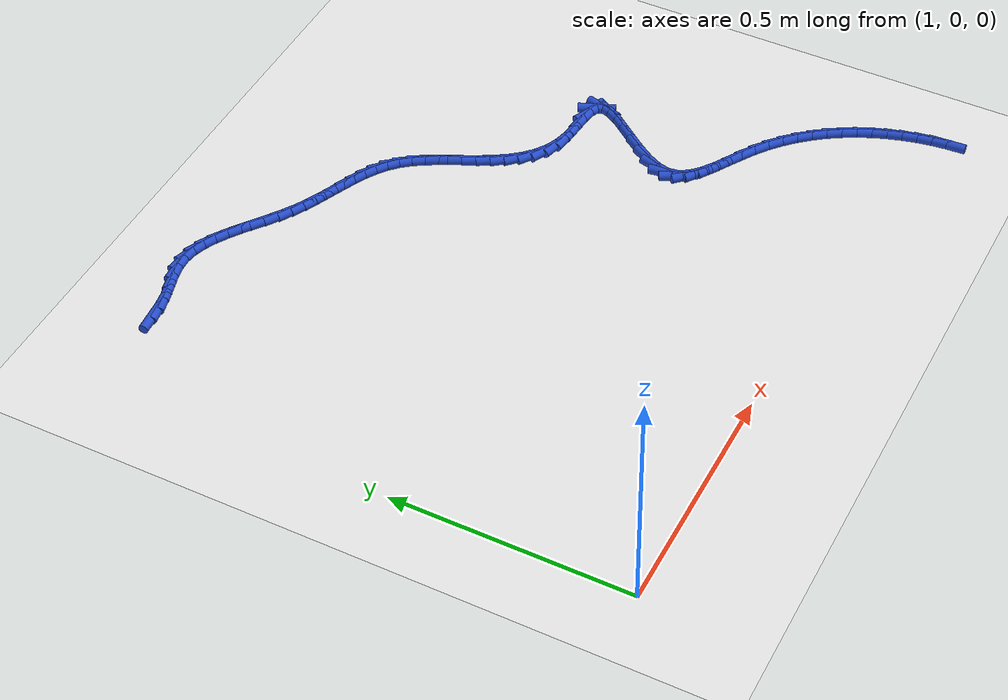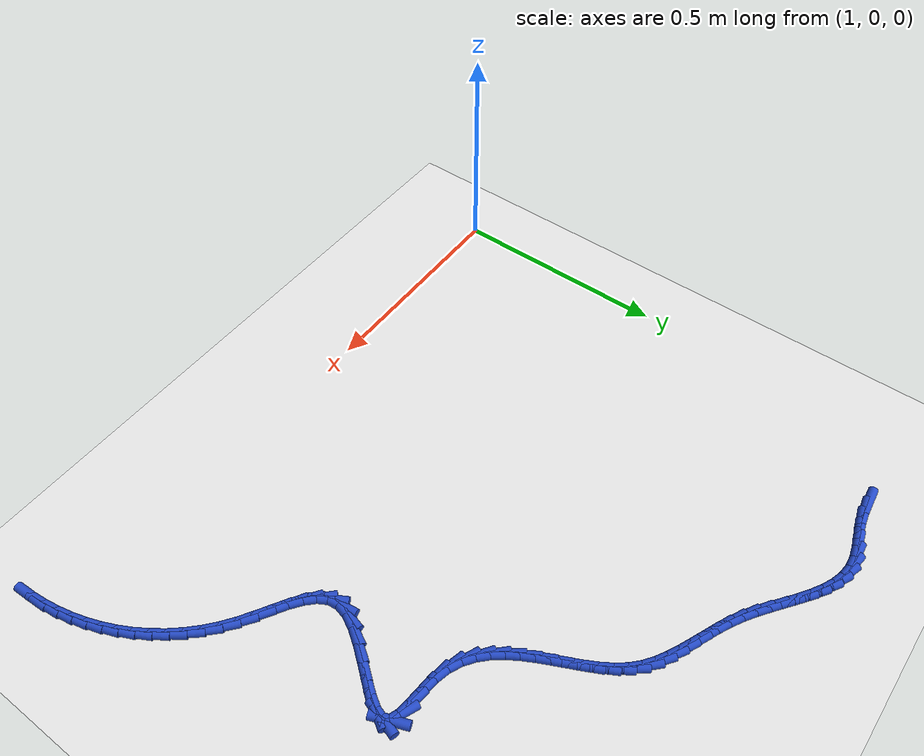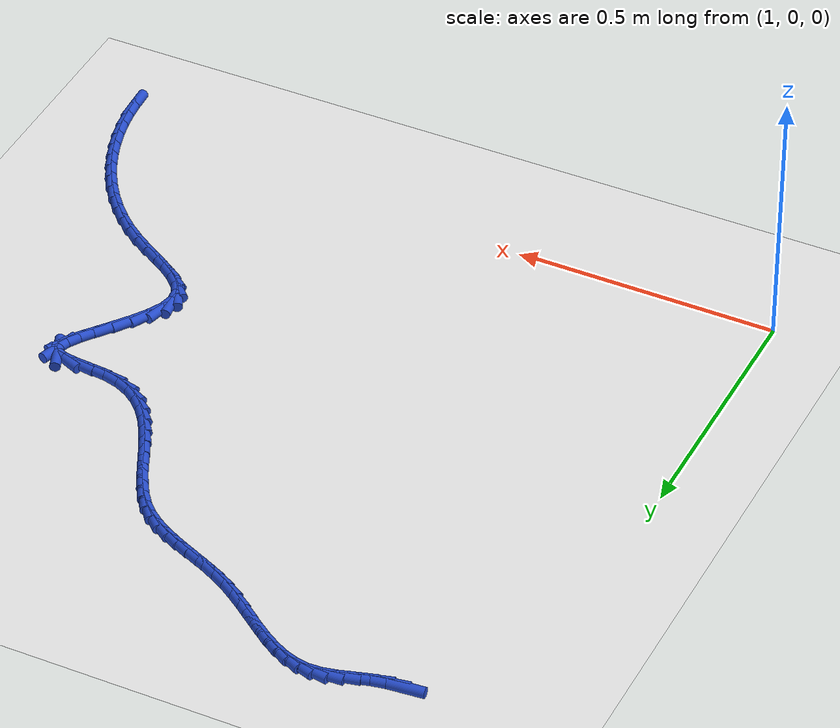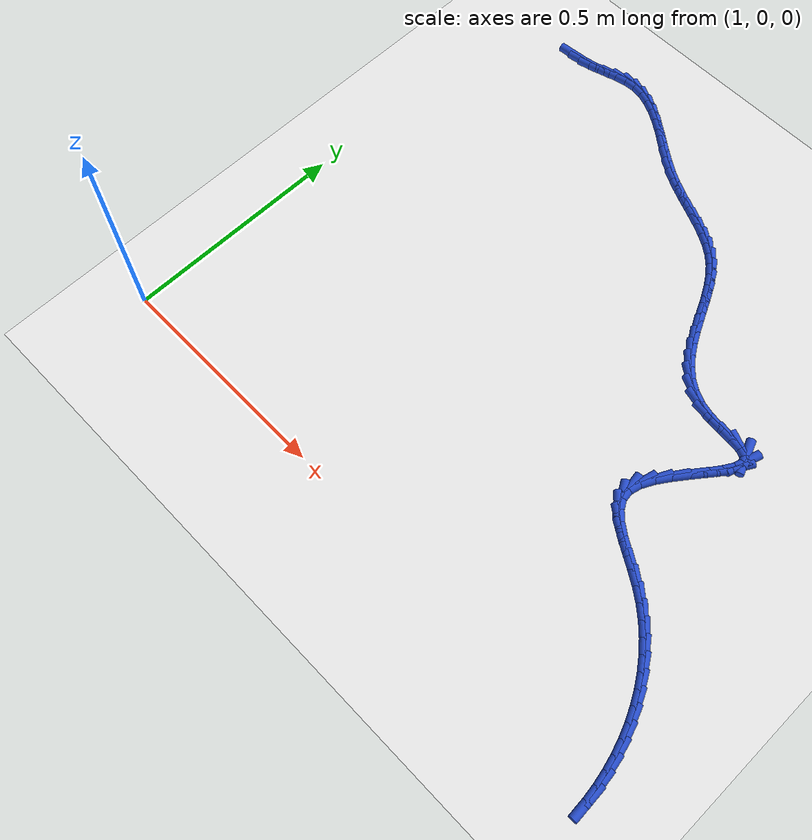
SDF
<sdf version="1.6">
 <world name="default">
  <model name="ground_plane">
   <static>1</static>
   <link name="link">
    <collision name="collision">
     <geometry><plane><normal>0 0 1</normal><size>100 100</size></plane></geometry>
     <surface><friction><ode><mu>100</mu><mu2>50</mu2></ode></friction></surface>
    </collision>
    <visual name="visual">
     <cast_shadows>0</cast_shadows>
     <geometry><plane><normal>0 0 1</normal><size>100 100</size></plane></geometry>
     <material>
      <script><uri>file://media/materials/scripts/gazebo.material</uri><name>Gazebo/WhiteGlow</name></script>
     </material>
    </visual>
   </link>
  </model>
  <model name="line">
   <link name="link_66">
    <pose>1.1870761028143422 1.1240682933298043 0.01 0 1.57 0.09376590115668865</pose>
    <collision name="collision">
     <geometry><cylinder><radius>0.01</radius><length>0.08</length></cylinder></geometry>
    </collision>
    <visual name="visual">
     <material>
      <script><name>Gazebo/Blue</name><uri>file://media/materials/scripts/gazebo.material</uri></script>
     </material>
     <geometry><cylinder><radius>0.01</radius><length>0.08</length></cylinder></geometry>
    </visual>
   </link>
   <link name="link_67">
    <pose>1.2142319435196987 1.1266220739129875 0.01 0 1.57 0.17965165779725353</pose>
    <collision name="collision">
     <geometry><cylinder><radius>0.01</radius><length>0.08</length></cylinder></geometry>
    </collision>
    <visual name="visual">
     <material>
      <script><name>Gazebo/Blue</name><uri>file://media/materials/scripts/gazebo.material</uri></script>
     </material>
     <geometry><cylinder><radius>0.01</radius><length>0.08</length></cylinder></geometry>
    </visual>
   </link>
   <link name="link_68">
    <pose>1.2413194313868445 1.1315414237813601 0.01 0 1.57 0.26802392747829523</pose>
    <collision name="collision">
     <geometry><cylinder><radius>0.01</radius><length>0.08</length></cylinder></geometry>
    </collision>
    <visual name="visual">
     <material>
      <script><name>Gazebo/Blue</name><uri>file://media/materials/scripts/gazebo.material</uri></script>
     </material>
     <geometry><cylinder><radius>0.01</radius><length>0.08</length></cylinder></geometry>
    </visual>
   </link>
   <link name="link_69">
    <pose>1.2683109290829406 1.1389541491604618 0.01 0 1.57 0.2914446457398157</pose>
    <collision name="collision">
     <geometry><cylinder><radius>0.01</radius><length>0.08</length></cylinder></geometry>
    </collision>
    <visual name="visual">
     <material>
      <script><name>Gazebo/Blue</name><uri>file://media/materials/scripts/gazebo.material</uri></script>
     </material>
     <geometry><cylinder><radius>0.01</radius><length>0.08</length></cylinder></geometry>
    </visual>
   </link>
   <link name="link_70">
    <pose>1.2950326112471406 1.14697029995917 0.01 0 1.57 0.22430005298441646</pose>
    <collision name="collision">
     <geometry><cylinder><radius>0.01</radius><length>0.08</length></cylinder></geometry>
    </collision>
    <visual name="visual">
     <material>
      <script><name>Gazebo/Blue</name><uri>file://media/materials/scripts/gazebo.material</uri></script>
     </material>
     <geometry><cylinder><radius>0.01</radius><length>0.08</length></cylinder></geometry>
    </visual>
   </link>
   <link name="link_71">
    <pose>1.321256536910218 1.1529529968601222 0.01 0 1.57 0.05680049520561192</pose>
    <collision name="collision">
     <geometry><cylinder><radius>0.01</radius><length>0.08</length></cylinder></geometry>
    </collision>
    <visual name="visual">
     <material>
      <script><name>Gazebo/Blue</name><uri>file://media/materials/scripts/gazebo.material</uri></script>
     </material>
     <geometry><cylinder><radius>0.01</radius><length>0.08</length></cylinder></geometry>
    </visual>
   </link>
   <link name="link_72">
    <pose>1.3467704154121236 1.1544037583247533 0.01 0 1.57 -0.14732418766810487</pose>
    <collision name="collision">
     <geometry><cylinder><radius>0.01</radius><length>0.08</length></cylinder></geometry>
    </collision>
    <visual name="visual">
     <material>
      <script><name>Gazebo/Blue</name><uri>file://media/materials/scripts/gazebo.material</uri></script>
     </material>
     <geometry><cylinder><radius>0.01</radius><length>0.08</length></cylinder></geometry>
    </visual>
   </link>
   <link name="link_73">
    <pose>1.371575976507996 1.1507226283115934 0.01 0 1.57 -0.3202163878088802</pose>
    <collision name="collision">
     <geometry><cylinder><radius>0.01</radius><length>0.08</length></cylinder></geometry>
    </collision>
    <visual name="visual">
     <material>
      <script><name>Gazebo/Blue</name><uri>file://media/materials/scripts/gazebo.material</uri></script>
     </material>
     <geometry><cylinder><radius>0.01</radius><length>0.08</length></cylinder></geometry>
    </visual>
   </link>
   <link name="link_74">
    <pose>1.395829371145521 1.1426794853862428 0.01 0 1.57 -0.45267663990264106</pose>
    <collision name="collision">
     <geometry><cylinder><radius>0.01</radius><length>0.08</length></cylinder></geometry>
    </collision>
    <visual name="visual">
     <material>
      <script><name>Gazebo/Blue</name><uri>file://media/materials/scripts/gazebo.material</uri></script>
     </material>
     <geometry><cylinder><radius>0.01</radius><length>0.08</length></cylinder></geometry>
    </visual>
   </link>
   <link name="link_75">
    <pose>1.4196901689483974 1.1310745343968125 0.01 0 1.57 -0.5463079709869142</pose>
    <collision name="collision">
     <geometry><cylinder><radius>0.01</radius><length>0.08</length></cylinder></geometry>
    </collision>
    <visual name="visual">
     <material>
      <script><name>Gazebo/Blue</name><uri>file://media/materials/scripts/gazebo.material</uri></script>
     </material>
     <geometry><cylinder><radius>0.01</radius><length>0.08</length></cylinder></geometry>
    </visual>
   </link>
   <link name="link_76">
    <pose>1.443317939540323 1.116707980191414 0.01 0 1.57 -0.60615055954736</pose>
    <collision name="collision">
     <geometry><cylinder><radius>0.01</radius><length>0.08</length></cylinder></geometry>
    </collision>
    <visual name="visual">
     <material>
      <script><name>Gazebo/Blue</name><uri>file://media/materials/scripts/gazebo.material</uri></script>
     </material>
     <geometry><cylinder><radius>0.01</radius><length>0.08</length></cylinder></geometry>
    </visual>
   </link>
   <link name="link_77">
    <pose>1.4668722525449958 1.1003800276181572 0.01 0 1.57 -0.636939981395557</pose>
    <collision name="collision">
     <geometry><cylinder><radius>0.01</radius><length>0.08</length></cylinder></geometry>
    </collision>
    <visual name="visual">
     <material>
      <script><name>Gazebo/Blue</name><uri>file://media/materials/scripts/gazebo.material</uri></script>
     </material>
     <geometry><cylinder><radius>0.01</radius><length>0.08</length></cylinder></geometry>
    </visual>
   </link>
   <link name="link_78">
    <pose>1.4905126775861142 1.0828908815251537 0.01 0 1.57 -0.6417721367929571</pose>
    <collision name="collision">
     <geometry><cylinder><radius>0.01</radius><length>0.08</length></cylinder></geometry>
    </collision>
    <visual name="visual">
     <material>
      <script><name>Gazebo/Blue</name><uri>file://media/materials/scripts/gazebo.material</uri></script>
     </material>
     <geometry><cylinder><radius>0.01</radius><length>0.08</length></cylinder></geometry>
    </visual>
   </link>
   <link name="link_79">
    <pose>1.5143987842873752 1.0650407467605152 0.01 0 1.57 -0.621881728110758</pose>
    <collision name="collision">
     <geometry><cylinder><radius>0.01</radius><length>0.08</length></cylinder></geometry>
    </collision>
    <visual name="visual">
     <material>
      <script><name>Gazebo/Blue</name><uri>file://media/materials/scripts/gazebo.material</uri></script>
     </material>
     <geometry><cylinder><radius>0.01</radius><length>0.08</length></cylinder></geometry>
    </visual>
   </link>
   <link name="link_80">
    <pose>1.5386901422724772 1.0476298281723515 0.01 0 1.57 -0.576798807724816</pose>
    <collision name="collision">
     <geometry><cylinder><radius>0.01</radius><length>0.08</length></cylinder></geometry>
    </collision>
    <visual name="visual">
     <material>
      <script><name>Gazebo/Blue</name><uri>file://media/materials/scripts/gazebo.material</uri></script>
     </material>
     <geometry><cylinder><radius>0.01</radius><length>0.08</length></cylinder></geometry>
    </visual>
   </link>
   <link name="link_81">
    <pose>1.5635463211651184 1.031458330608774 0.01 0 1.57 -0.5095774138339798</pose>
    <collision name="collision">
     <geometry><cylinder><radius>0.01</radius><length>0.08</length></cylinder></geometry>
    </collision>
    <visual name="visual">
     <material>
      <script><name>Gazebo/Blue</name><uri>file://media/materials/scripts/gazebo.material</uri></script>
     </material>
     <geometry><cylinder><radius>0.01</radius><length>0.08</length></cylinder></geometry>
    </visual>
   </link>
   <link name="link_82">
    <pose>1.5890764207866805 1.0171920077761607 0.01 0 1.57 -0.4516879873389002</pose>
    <collision name="collision">
     <geometry><cylinder><radius>0.01</radius><length>0.08</length></cylinder></geometry>
    </collision>
    <visual name="visual">
     <material>
      <script><name>Gazebo/Blue</name><uri>file://media/materials/scripts/gazebo.material</uri></script>
     </material>
     <geometry><cylinder><radius>0.01</radius><length>0.08</length></cylinder></geometry>
    </visual>
   </link>
   <link name="link_83">
    <pose>1.6150497275559288 1.0045913532478732 0.01 0 1.57 -0.4173337428751883</pose>
    <collision name="collision">
     <geometry><cylinder><radius>0.01</radius><length>0.08</length></cylinder></geometry>
    </collision>
    <visual name="visual">
     <material>
      <script><name>Gazebo/Blue</name><uri>file://media/materials/scripts/gazebo.material</uri></script>
     </material>
     <geometry><cylinder><radius>0.01</radius><length>0.08</length></cylinder></geometry>
    </visual>
   </link>
   <link name="link_84">
    <pose>1.641095304951707 0.9930433078289995 0.01 0 1.57 -0.4073654501644141</pose>
    <collision name="collision">
     <geometry><cylinder><radius>0.01</radius><length>0.08</length></cylinder></geometry>
    </collision>
    <visual name="visual">
     <material>
      <script><name>Gazebo/Blue</name><uri>file://media/materials/scripts/gazebo.material</uri></script>
     </material>
     <geometry><cylinder><radius>0.01</radius><length>0.08</length></cylinder></geometry>
    </visual>
   </link>
   <link name="link_85">
    <pose>1.666841776290135 0.9819336397347158 0.01 0 1.57 -0.42289795561225374</pose>
    <collision name="collision">
     <geometry><cylinder><radius>0.01</radius><length>0.08</length></cylinder></geometry>
    </collision>
    <visual name="visual">
     <material>
      <script><name>Gazebo/Blue</name><uri>file://media/materials/scripts/gazebo.material</uri></script>
     </material>
     <geometry><cylinder><radius>0.01</radius><length>0.08</length></cylinder></geometry>
    </visual>
   </link>
   <link name="link_86">
    <pose>1.6919177648873316 0.9706481171801985 0.01 0 1.57 -0.4655944123026897</pose>
    <collision name="collision">
     <geometry><cylinder><radius>0.01</radius><length>0.08</length></cylinder></geometry>
    </collision>
    <visual name="visual">
     <material>
      <script><name>Gazebo/Blue</name><uri>file://media/materials/scripts/gazebo.material</uri></script>
     </material>
     <geometry><cylinder><radius>0.01</radius><length>0.08</length></cylinder></geometry>
    </visual>
   </link>
   <link name="link_87">
    <pose>1.715951894059416 0.9585725083806228 0.01 0 1.57 -0.5374037986020508</pose>
    <collision name="collision">
     <geometry><cylinder><radius>0.01</radius><length>0.08</length></cylinder></geometry>
    </collision>
    <visual name="visual">
     <material>
      <script><name>Gazebo/Blue</name><uri>file://media/materials/scripts/gazebo.material</uri></script>
     </material>
     <geometry><cylinder><radius>0.01</radius><length>0.08</length></cylinder></geometry>
    </visual>
   </link>
   <link name="link_88">
    <pose>1.7385727871225058 0.9450925815511648 0.01 0 1.57 -0.6395352327221191</pose>
    <collision name="collision">
     <geometry><cylinder><radius>0.01</radius><length>0.08</length></cylinder></geometry>
    </collision>
    <visual name="visual">
     <material>
      <script><name>Gazebo/Blue</name><uri>file://media/materials/scripts/gazebo.material</uri></script>
     </material>
     <geometry><cylinder><radius>0.01</radius><length>0.08</length></cylinder></geometry>
    </visual>
   </link>
   <link name="link_89">
    <pose>1.7594090673927214 0.9295941049070011 0.01 0 1.57 -0.7701876874329247</pose>
    <collision name="collision">
     <geometry><cylinder><radius>0.01</radius><length>0.08</length></cylinder></geometry>
    </collision>
    <visual name="visual">
     <material>
      <script><name>Gazebo/Blue</name><uri>file://media/materials/scripts/gazebo.material</uri></script>
     </material>
     <geometry><cylinder><radius>0.01</radius><length>0.08</length></cylinder></geometry>
    </visual>
   </link>
   <link name="link_90">
    <pose>1.7780939418413382 0.9114691683862071 0.01 0 1.57 -0.9034623496639498</pose>
    <collision name="collision">
     <geometry><cylinder><radius>0.01</radius><length>0.08</length></cylinder></geometry>
    </collision>
    <visual name="visual">
     <material>
      <script><name>Gazebo/Blue</name><uri>file://media/materials/scripts/gazebo.material</uri></script>
     </material>
     <geometry><cylinder><radius>0.01</radius><length>0.08</length></cylinder></geometry>
    </visual>
   </link>
   <link name="link_91">
    <pose>1.7945782645540493 0.8905479570645414 0.01 0 1.57 -1.0038426076547085</pose>
    <collision name="collision">
     <geometry><cylinder><radius>0.01</radius><length>0.08</length></cylinder></geometry>
    </collision>
    <visual name="visual">
     <material>
      <script><name>Gazebo/Blue</name><uri>file://media/materials/scripts/gazebo.material</uri></script>
     </material>
     <geometry><cylinder><radius>0.01</radius><length>0.08</length></cylinder></geometry>
    </visual>
   </link>
   <link name="link_92">
    <pose>1.809331456283168 0.8673758570219618 0.01 0 1.57 -1.0712734278921052</pose>
    <collision name="collision">
     <geometry><cylinder><radius>0.01</radius><length>0.08</length></cylinder></geometry>
    </collision>
    <visual name="visual">
     <material>
      <script><name>Gazebo/Blue</name><uri>file://media/materials/scripts/gazebo.material</uri></script>
     </material>
     <geometry><cylinder><radius>0.01</radius><length>0.08</length></cylinder></geometry>
    </visual>
   </link>
   <link name="link_93">
    <pose>1.8228707566699627 0.8425642055836581 0.01 0 1.57 -1.1095442872445158</pose>
    <collision name="collision">
     <geometry><cylinder><radius>0.01</radius><length>0.08</length></cylinder></geometry>
    </collision>
    <visual name="visual">
     <material>
      <script><name>Gazebo/Blue</name><uri>file://media/materials/scripts/gazebo.material</uri></script>
     </material>
     <geometry><cylinder><radius>0.01</radius><length>0.08</length></cylinder></geometry>
    </visual>
   </link>
   <link name="link_94">
    <pose>1.8357134053557007 0.8167243400748195 0.01 0 1.57 -1.1214207741752051</pose>
    <collision name="collision">
     <geometry><cylinder><radius>0.01</radius><length>0.08</length></cylinder></geometry>
    </collision>
    <visual name="visual">
     <material>
      <script><name>Gazebo/Blue</name><uri>file://media/materials/scripts/gazebo.material</uri></script>
     </material>
     <geometry><cylinder><radius>0.01</radius><length>0.08</length></cylinder></geometry>
    </visual>
   </link>
   <link name="link_95">
    <pose>1.8483766419816516 0.7904675978206364 0.01 0 1.57 -1.1080723671258257</pose>
    <collision name="collision">
     <geometry><cylinder><radius>0.01</radius><length>0.08</length></cylinder></geometry>
    </collision>
    <visual name="visual">
     <material>
      <script><name>Gazebo/Blue</name><uri>file://media/materials/scripts/gazebo.material</uri></script>
     </material>
     <geometry><cylinder><radius>0.01</radius><length>0.08</length></cylinder></geometry>
    </visual>
   </link>
   <link name="link_96">
    <pose>1.861377706189082 0.7644053161462986 0.01 0 1.57 -1.069015690051241</pose>
    <collision name="collision">
     <geometry><cylinder><radius>0.01</radius><length>0.08</length></cylinder></geometry>
    </collision>
    <visual name="visual">
     <material>
      <script><name>Gazebo/Blue</name><uri>file://media/materials/scripts/gazebo.material</uri></script>
     </material>
     <geometry><cylinder><radius>0.01</radius><length>0.08</length></cylinder></geometry>
    </visual>
   </link>
   <link name="link_97">
    <pose>1.8752338376192605 0.7391488323769961 0.01 0 1.57 -1.002339002714773</pose>
    <collision name="collision">
     <geometry><cylinder><radius>0.01</radius><length>0.08</length></cylinder></geometry>
    </collision>
    <visual name="visual">
     <material>
      <script><name>Gazebo/Blue</name><uri>file://media/materials/scripts/gazebo.material</uri></script>
     </material>
     <geometry><cylinder><radius>0.01</radius><length>0.08</length></cylinder></geometry>
    </visual>
   </link>
   <link name="link_98">
    <pose>1.890462275913455 0.7153094838379189 0.01 0 1.57 -0.9053696773807592</pose>
    <collision name="collision">
     <geometry><cylinder><radius>0.01</radius><length>0.08</length></cylinder></geometry>
    </collision>
    <visual name="visual">
     <material>
      <script><name>Gazebo/Blue</name><uri>file://media/materials/scripts/gazebo.material</uri></script>
     </material>
     <geometry><cylinder><radius>0.01</radius><length>0.08</length></cylinder></geometry>
    </visual>
   </link>
   <link name="link_99">
    <pose>1.9075802607129335 0.6934986078542564 0.01 0 1.57 -0.7762577746734833</pose>
    <collision name="collision">
     <geometry><cylinder><radius>0.01</radius><length>0.08</length></cylinder></geometry>
    </collision>
    <visual name="visual">
     <material>
      <script><name>Gazebo/Blue</name><uri>file://media/materials/scripts/gazebo.material</uri></script>
     </material>
     <geometry><cylinder><radius>0.01</radius><length>0.08</length></cylinder></geometry>
    </visual>
   </link>
   <link name="link_100">
    <pose>1.9271050316589653 0.6743275417511989 0.01 0 1.57 -0.6168510560199968</pose>
    <collision name="collision">
     <geometry><cylinder><radius>0.01</radius><length>0.08</length></cylinder></geometry>
    </collision>
    <visual name="visual">
     <material>
      <script><name>Gazebo/Blue</name><uri>file://media/materials/scripts/gazebo.material</uri></script>
     </material>
     <geometry><cylinder><radius>0.01</radius><length>0.08</length></cylinder></geometry>
    </visual>
   </link>
   <link name="link_101">
    <pose>1.9495538283928173 0.6584076228539365 0.01 0 1.57 -0.4358467954528984</pose>
    <collision name="collision">
     <geometry><cylinder><radius>0.01</radius><length>0.08</length></cylinder></geometry>
    </collision>
    <visual name="visual">
     <material>
      <script><name>Gazebo/Blue</name><uri>file://media/materials/scripts/gazebo.material</uri></script>
     </material>
     <geometry><cylinder><radius>0.01</radius><length>0.08</length></cylinder></geometry>
    </visual>
   </link>
   <link name="link_102">
    <pose>1.975443890555757 0.6463501884876587 0.01 0 1.57 -0.2500680511181714</pose>
    <collision name="collision">
     <geometry><cylinder><radius>0.01</radius><length>0.08</length></cylinder></geometry>
    </collision>
    <visual name="visual">
     <material>
      <script><name>Gazebo/Blue</name><uri>file://media/materials/scripts/gazebo.material</uri></script>
     </material>
     <geometry><cylinder><radius>0.01</radius><length>0.08</length></cylinder></geometry>
    </visual>
   </link>
   <link name="link_103">
    <pose>2.0052506085270636 0.63873712318815 0.01 0 1.57 -0.11830283851813377</pose>
    <collision name="collision">
     <geometry><cylinder><radius>0.01</radius><length>0.08</length></cylinder></geometry>
    </collision>
    <visual name="visual">
     <material>
      <script><name>Gazebo/Blue</name><uri>file://media/materials/scripts/gazebo.material</uri></script>
     </material>
     <geometry><cylinder><radius>0.01</radius><length>0.08</length></cylinder></geometry>
    </visual>
   </link>
   <link name="link_104">
    <pose>2.0376527437870333 0.6348858750331817 0.01 0 1.57 -0.07944997966516416</pose>
    <collision name="collision">
     <geometry><cylinder><radius>0.01</radius><length>0.08</length></cylinder></geometry>
    </collision>
    <visual name="visual">
     <material>
      <script><name>Gazebo/Blue</name><uri>file://media/materials/scripts/gazebo.material</uri></script>
     </material>
     <geometry><cylinder><radius>0.01</radius><length>0.08</length></cylinder></geometry>
    </visual>
   </link>
   <link name="link_105">
    <pose>2.068891934194189 0.6323986864941795 0.01 0 1.57 -0.1384559685129104</pose>
    <collision name="collision">
     <geometry><cylinder><radius>0.01</radius><length>0.08</length></cylinder></geometry>
    </collision>
    <visual name="visual">
     <material>
      <script><name>Gazebo/Blue</name><uri>file://media/materials/scripts/gazebo.material</uri></script>
     </material>
     <geometry><cylinder><radius>0.01</radius><length>0.08</length></cylinder></geometry>
    </visual>
   </link>
   <link name="link_106">
    <pose>2.0950361245145595 0.628755557837303 0.01 0 1.57 -0.4040600202982624</pose>
    <collision name="collision">
     <geometry><cylinder><radius>0.01</radius><length>0.08</length></cylinder></geometry>
    </collision>
    <visual name="visual">
     <material>
      <script><name>Gazebo/Blue</name><uri>file://media/materials/scripts/gazebo.material</uri></script>
     </material>
     <geometry><cylinder><radius>0.01</radius><length>0.08</length></cylinder></geometry>
    </visual>
   </link>
   <link name="link_107">
    <pose>2.1121532595141743 0.6214364893287121 0.01 0 1.57 -1.193388404743611</pose>
    <collision name="collision">
     <geometry><cylinder><radius>0.01</radius><length>0.08</length></cylinder></geometry>
    </collision>
    <visual name="visual">
     <material>
      <script><name>Gazebo/Blue</name><uri>file://media/materials/scripts/gazebo.material</uri></script>
     </material>
     <geometry><cylinder><radius>0.01</radius><length>0.08</length></cylinder></geometry>
    </visual>
   </link>
   <link name="link_108">
    <pose>2.117296949986357 0.6084608139139248 0.01 0 1.57 1.2818512479314532</pose>
    <collision name="collision">
     <geometry><cylinder><radius>0.01</radius><length>0.08</length></cylinder></geometry>
    </collision>
    <visual name="visual">
     <material>
      <script><name>Gazebo/Blue</name><uri>file://media/materials/scripts/gazebo.material</uri></script>
     </material>
     <geometry><cylinder><radius>0.01</radius><length>0.08</length></cylinder></geometry>
    </visual>
   </link>
   <link name="link_109">
    <pose>2.111878214109434 0.590232132774277 0.01 0 1.57 1.0331770734157517</pose>
    <collision name="collision">
     <geometry><cylinder><radius>0.01</radius><length>0.08</length></cylinder></geometry>
    </collision>
    <visual name="visual">
     <material>
      <script><name>Gazebo/Blue</name><uri>file://media/materials/scripts/gazebo.material</uri></script>
     </material>
     <geometry><cylinder><radius>0.01</radius><length>0.08</length></cylinder></geometry>
    </visual>
   </link>
   <link name="link_110">
    <pose>2.098511787588018 0.5678126922920805 0.01 0 1.57 0.9389595610371577</pose>
    <collision name="collision">
     <geometry><cylinder><radius>0.01</radius><length>0.08</length></cylinder></geometry>
    </collision>
    <visual name="visual">
     <material>
      <script><name>Gazebo/Blue</name><uri>file://media/materials/scripts/gazebo.material</uri></script>
     </material>
     <geometry><cylinder><radius>0.01</radius><length>0.08</length></cylinder></geometry>
    </visual>
   </link>
   <link name="link_111">
    <pose>2.0798124464862324 0.5422647609333977 0.01 0 1.57 0.9111128262575541</pose>
    <collision name="collision">
     <geometry><cylinder><radius>0.01</radius><length>0.08</length></cylinder></geometry>
    </collision>
    <visual name="visual">
     <material>
      <script><name>Gazebo/Blue</name><uri>file://media/materials/scripts/gazebo.material</uri></script>
     </material>
     <geometry><cylinder><radius>0.01</radius><length>0.08</length></cylinder></geometry>
    </visual>
   </link>
   <link name="link_112">
    <pose>2.0583949668682036 0.5146506071642912 0.01 0 1.57 0.9260158867525837</pose>
    <collision name="collision">
     <geometry><cylinder><radius>0.01</radius><length>0.08</length></cylinder></geometry>
    </collision>
    <visual name="visual">
     <material>
      <script><name>Gazebo/Blue</name><uri>file://media/materials/scripts/gazebo.material</uri></script>
     </material>
     <geometry><cylinder><radius>0.01</radius><length>0.08</length></cylinder></geometry>
    </visual>
   </link>
   <link name="link_113">
    <pose>2.0368741247980524 0.48603249945082283 0.01 0 1.57 0.9835318177837018</pose>
    <collision name="collision">
     <geometry><cylinder><radius>0.01</radius><length>0.08</length></cylinder></geometry>
    </collision>
    <visual name="visual">
     <material>
      <script><name>Gazebo/Blue</name><uri>file://media/materials/scripts/gazebo.material</uri></script>
     </material>
     <geometry><cylinder><radius>0.01</radius><length>0.08</length></cylinder></geometry>
    </visual>
   </link>
   <link name="link_114">
    <pose>2.0178646963399056 0.45747270625905606 0.01 0 1.57 1.1023893083673468</pose>
    <collision name="collision">
     <geometry><cylinder><radius>0.01</radius><length>0.08</length></cylinder></geometry>
    </collision>
    <visual name="visual">
     <material>
      <script><name>Gazebo/Blue</name><uri>file://media/materials/scripts/gazebo.material</uri></script>
     </material>
     <geometry><cylinder><radius>0.01</radius><length>0.08</length></cylinder></geometry>
    </visual>
   </link>
   <link name="link_115">
    <pose>2.0039814575578863 0.430033496055053 0.01 0 1.57 1.332212132269377</pose>
    <collision name="collision">
     <geometry><cylinder><radius>0.01</radius><length>0.08</length></cylinder></geometry>
    </collision>
    <visual name="visual">
     <material>
      <script><name>Gazebo/Blue</name><uri>file://media/materials/scripts/gazebo.material</uri></script>
     </material>
     <geometry><cylinder><radius>0.01</radius><length>0.08</length></cylinder></geometry>
    </visual>
   </link>
   <link name="link_116">
    <pose>1.9978386366830383 0.40477691344199107 0.01 0 1.57 -1.424916084982434</pose>
    <collision name="collision">
     <geometry><cylinder><radius>0.01</radius><length>0.08</length></cylinder></geometry>
    </collision>
    <visual name="visual">
     <material>
      <script><name>Gazebo/Blue</name><uri>file://media/materials/scripts/gazebo.material</uri></script>
     </material>
     <geometry><cylinder><radius>0.01</radius><length>0.08</length></cylinder></geometry>
    </visual>
   </link>
   <link name="link_117">
    <pose>2.0011280909634643 0.3823880914475904 0.01 0 1.57 -1.0446541489747752</pose>
    <collision name="collision">
     <geometry><cylinder><radius>0.01</radius><length>0.08</length></cylinder></geometry>
    </collision>
    <visual name="visual">
     <material>
      <script><name>Gazebo/Blue</name><uri>file://media/materials/scripts/gazebo.material</uri></script>
     </material>
     <geometry><cylinder><radius>0.01</radius><length>0.08</length></cylinder></geometry>
    </visual>
   </link>
   <link name="link_118">
    <pose>2.012733423345892 0.3624046166431127 0.01 0 1.57 -0.7850106930269752</pose>
    <collision name="collision">
     <geometry><cylinder><radius>0.01</radius><length>0.08</length></cylinder></geometry>
    </collision>
    <visual name="visual">
     <material>
      <script><name>Gazebo/Blue</name><uri>file://media/materials/scripts/gazebo.material</uri></script>
     </material>
     <geometry><cylinder><radius>0.01</radius><length>0.08</length></cylinder></geometry>
    </visual>
   </link>
   <link name="link_119">
    <pose>2.0310057221201414 0.34414647233388673 0.01 0 1.57 -0.6364588288066718</pose>
    <collision name="collision">
     <geometry><cylinder><radius>0.01</radius><length>0.08</length></cylinder></geometry>
    </collision>
    <visual name="visual">
     <material>
      <script><name>Gazebo/Blue</name><uri>file://media/materials/scripts/gazebo.material</uri></script>
     </material>
     <geometry><cylinder><radius>0.01</radius><length>0.08</length></cylinder></geometry>
    </visual>
   </link>
   <link name="link_120">
    <pose>2.0542960755760333 0.326933641825242 0.01 0 1.57 -0.5635831971443453</pose>
    <collision name="collision">
     <geometry><cylinder><radius>0.01</radius><length>0.08</length></cylinder></geometry>
    </collision>
    <visual name="visual">
     <material>
      <script><name>Gazebo/Blue</name><uri>file://media/materials/scripts/gazebo.material</uri></script>
     </material>
     <geometry><cylinder><radius>0.01</radius><length>0.08</length></cylinder></geometry>
    </visual>
   </link>
   <link name="link_121">
    <pose>2.0809555720033894 0.3100861084225077 0.01 0 1.57 -0.5438948360235875</pose>
    <collision name="collision">
     <geometry><cylinder><radius>0.01</radius><length>0.08</length></cylinder></geometry>
    </collision>
    <visual name="visual">
     <material>
      <script><name>Gazebo/Blue</name><uri>file://media/materials/scripts/gazebo.material</uri></script>
     </material>
     <geometry><cylinder><radius>0.01</radius><length>0.08</length></cylinder></geometry>
    </visual>
   </link>
   <link name="link_122">
    <pose>2.109335299692031 0.292923855431013 0.01 0 1.57 -0.5680234738807505</pose>
    <collision name="collision">
     <geometry><cylinder><radius>0.01</radius><length>0.08</length></cylinder></geometry>
    </collision>
    <visual name="visual">
     <material>
      <script><name>Gazebo/Blue</name><uri>file://media/materials/scripts/gazebo.material</uri></script>
     </material>
     <geometry><cylinder><radius>0.01</radius><length>0.08</length></cylinder></geometry>
    </visual>
   </link>
   <link name="link_123">
    <pose>2.137786346931776 0.27476686615608764 0.01 0 1.57 -0.6326325850215475</pose>
    <collision name="collision">
     <geometry><cylinder><radius>0.01</radius><length>0.08</length></cylinder></geometry>
    </collision>
    <visual name="visual">
     <material>
      <script><name>Gazebo/Blue</name><uri>file://media/materials/scripts/gazebo.material</uri></script>
     </material>
     <geometry><cylinder><radius>0.01</radius><length>0.08</length></cylinder></geometry>
    </visual>
   </link>
   <link name="link_124">
    <pose>2.164764773303708 0.2549875092481313 0.01 0 1.57 -0.7117666029238326</pose>
    <collision name="collision">
     <geometry><cylinder><radius>0.01</radius><length>0.08</length></cylinder></geometry>
    </collision>
    <visual name="visual">
     <material>
      <script><name>Gazebo/Blue</name><uri>file://media/materials/scripts/gazebo.material</uri></script>
     </material>
     <geometry><cylinder><radius>0.01</radius><length>0.08</length></cylinder></geometry>
    </visual>
   </link>
   <link name="link_125">
    <pose>2.1897252279711985 0.2334564939916673 0.01 0 1.57 -0.789445883774655</pose>
    <collision name="collision">
     <geometry><cylinder><radius>0.01</radius><length>0.08</length></cylinder></geometry>
    </collision>
    <visual name="visual">
     <material>
      <script><name>Gazebo/Blue</name><uri>file://media/materials/scripts/gazebo.material</uri></script>
     </material>
     <geometry><cylinder><radius>0.01</radius><length>0.08</length></cylinder></geometry>
    </visual>
   </link>
   <link name="link_126">
    <pose>2.2126749043052323 0.21032027381644947 0.01 0 1.57 -0.8651539443826302</pose>
    <collision name="collision">
     <geometry><cylinder><radius>0.01</radius><length>0.08</length></cylinder></geometry>
    </collision>
    <visual name="visual">
     <material>
      <script><name>Gazebo/Blue</name><uri>file://media/materials/scripts/gazebo.material</uri></script>
     </material>
     <geometry><cylinder><radius>0.01</radius><length>0.08</length></cylinder></geometry>
    </visual>
   </link>
   <link name="link_127">
    <pose>2.2336268408564317 0.18572821915695525 0.01 0 1.57 -0.9386758037250155</pose>
    <collision name="collision">
     <geometry><cylinder><radius>0.01</radius><length>0.08</length></cylinder></geometry>
    </collision>
    <visual name="visual">
     <material>
      <script><name>Gazebo/Blue</name><uri>file://media/materials/scripts/gazebo.material</uri></script>
     </material>
     <geometry><cylinder><radius>0.01</radius><length>0.08</length></cylinder></geometry>
    </visual>
   </link>
   <link name="link_128">
    <pose>2.2525940761754213 0.1598297004476612 0.01 0 1.57 -1.009919418727432</pose>
    <collision name="collision">
     <geometry><cylinder><radius>0.01</radius><length>0.08</length></cylinder></geometry>
    </collision>
    <visual name="visual">
     <material>
      <script><name>Gazebo/Blue</name><uri>file://media/materials/scripts/gazebo.material</uri></script>
     </material>
     <geometry><cylinder><radius>0.01</radius><length>0.08</length></cylinder></geometry>
    </visual>
   </link>
   <link name="link_129">
    <pose>2.2695896488128255 0.13277408812304406 0.01 0 1.57 -1.078903571957551</pose>
    <collision name="collision">
     <geometry><cylinder><radius>0.01</radius><length>0.08</length></cylinder></geometry>
    </collision>
    <visual name="visual">
     <material>
      <script><name>Gazebo/Blue</name><uri>file://media/materials/scripts/gazebo.material</uri></script>
     </material>
     <geometry><cylinder><radius>0.01</radius><length>0.08</length></cylinder></geometry>
    </visual>
   </link>
   <link name="link_130">
    <pose>2.2846265973192676 0.10471075261758064 0.01 0 1.57 -1.145741971920464</pose>
    <collision name="collision">
     <geometry><cylinder><radius>0.01</radius><length>0.08</length></cylinder></geometry>
    </collision>
    <visual name="visual">
     <material>
      <script><name>Gazebo/Blue</name><uri>file://media/materials/scripts/gazebo.material</uri></script>
     </material>
     <geometry><cylinder><radius>0.01</radius><length>0.08</length></cylinder></geometry>
    </visual>
   </link>
   <link name="link_131">
    <pose>2.297717960245371 0.07578906436574721 0.01 0 1.57 -1.2106264524090162</pose>
    <collision name="collision">
     <geometry><cylinder><radius>0.01</radius><length>0.08</length></cylinder></geometry>
    </collision>
    <visual name="visual">
     <material>
      <script><name>Gazebo/Blue</name><uri>file://media/materials/scripts/gazebo.material</uri></script>
     </material>
     <geometry><cylinder><radius>0.01</radius><length>0.08</length></cylinder></geometry>
    </visual>
   </link>
   <link name="link_132">
    <pose>2.3088767761417586 0.046158393802021504 0.01 0 1.57 -1.2738113357306116</pose>
    <collision name="collision">
     <geometry><cylinder><radius>0.01</radius><length>0.08</length></cylinder></geometry>
    </collision>
    <visual name="visual">
     <material>
      <script><name>Gazebo/Blue</name><uri>file://media/materials/scripts/gazebo.material</uri></script>
     </material>
     <geometry><cylinder><radius>0.01</radius><length>0.08</length></cylinder></geometry>
    </visual>
   </link>
   <link name="link_133">
    <pose>2.3181160835590564 0.015968111360879902 0.01 0 1.57 -1.3356001749262563</pose>
    <collision name="collision">
     <geometry><cylinder><radius>0.01</radius><length>0.08</length></cylinder></geometry>
    </collision>
    <visual name="visual">
     <material>
      <script><name>Gazebo/Blue</name><uri>file://media/materials/scripts/gazebo.material</uri></script>
     </material>
     <geometry><cylinder><radius>0.01</radius><length>0.08</length></cylinder></geometry>
    </visual>
   </link>
   <link name="link_134">
    <pose>2.3254489210478857 -0.014632412523200918 0.01 0 1.57 -1.3963353825580382</pose>
    <collision name="collision">
     <geometry><cylinder><radius>0.01</radius><length>0.08</length></cylinder></geometry>
    </collision>
    <visual name="visual">
     <material>
      <script><name>Gazebo/Blue</name><uri>file://media/materials/scripts/gazebo.material</uri></script>
     </material>
     <geometry><cylinder><radius>0.01</radius><length>0.08</length></cylinder></geometry>
    </visual>
   </link>
   <link name="link_135">
    <pose>2.330888327158872 -0.04549380741574452 0.01 0 1.57 -1.4563907434738315</pose>
    <collision name="collision">
     <geometry><cylinder><radius>0.01</radius><length>0.08</length></cylinder></geometry>
    </collision>
    <visual name="visual">
     <material>
      <script><name>Gazebo/Blue</name><uri>file://media/materials/scripts/gazebo.material</uri></script>
     </material>
     <geometry><cylinder><radius>0.01</radius><length>0.08</length></cylinder></geometry>
    </visual>
   </link>
   <link name="link_136">
    <pose>2.334447340442638 -0.07646670288227324 0.01 0 1.57 -1.5161664771272703</pose>
    <collision name="collision">
     <geometry><cylinder><radius>0.01</radius><length>0.08</length></cylinder></geometry>
    </collision>
    <visual name="visual">
     <material>
      <script><name>Gazebo/Blue</name><uri>file://media/materials/scripts/gazebo.material</uri></script>
     </material>
     <geometry><cylinder><radius>0.01</radius><length>0.08</length></cylinder></geometry>
    </visual>
   </link>
  </model>
 </world>
</sdf>
